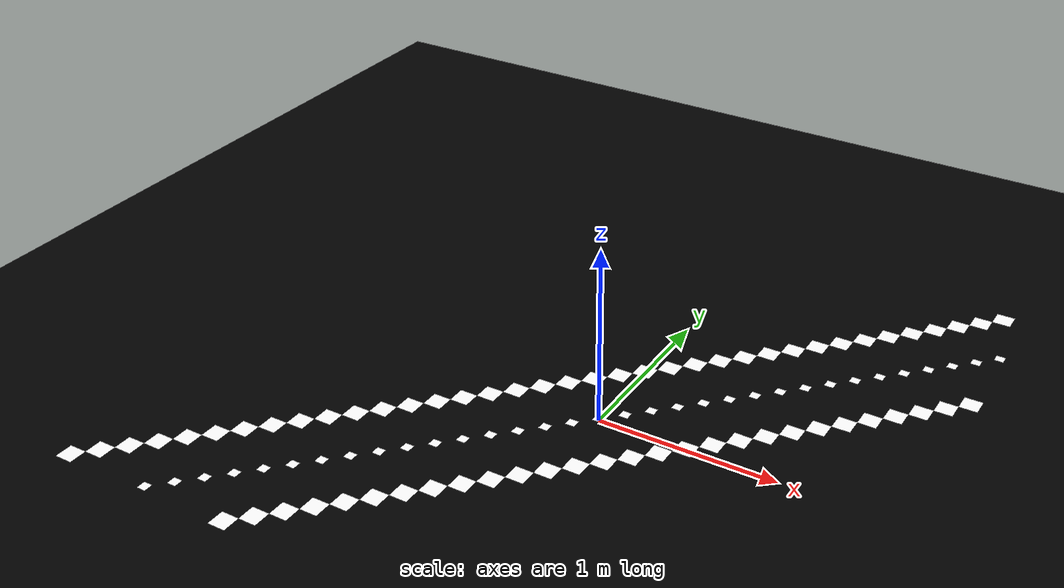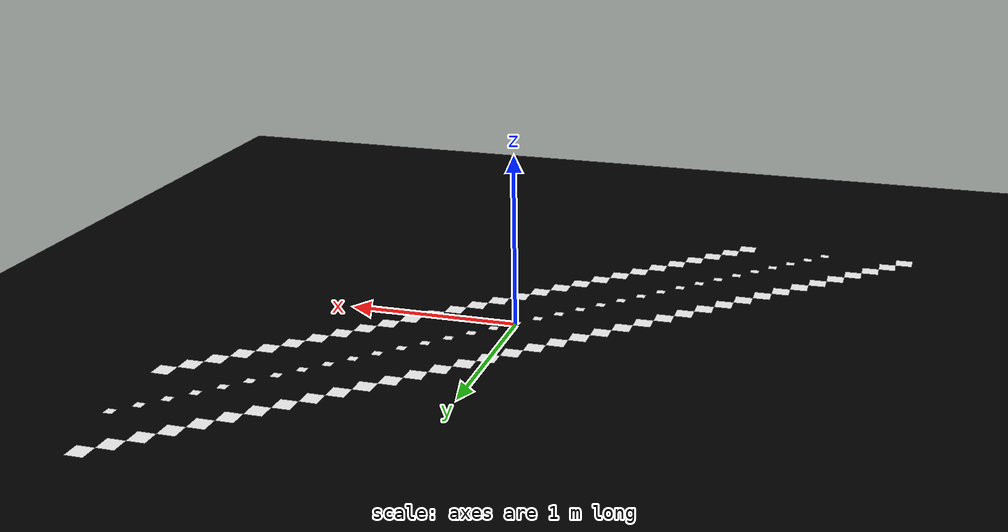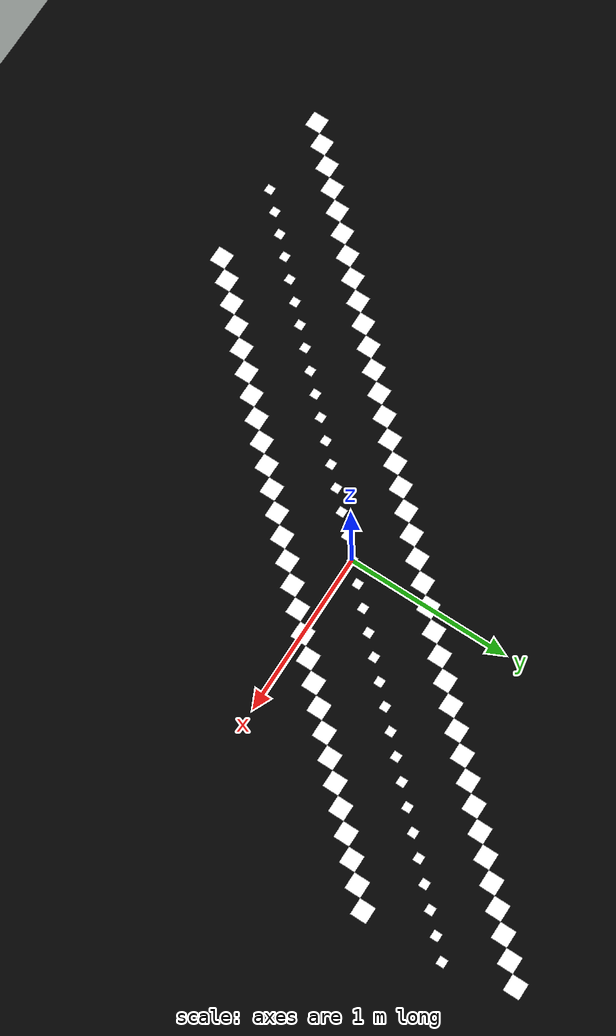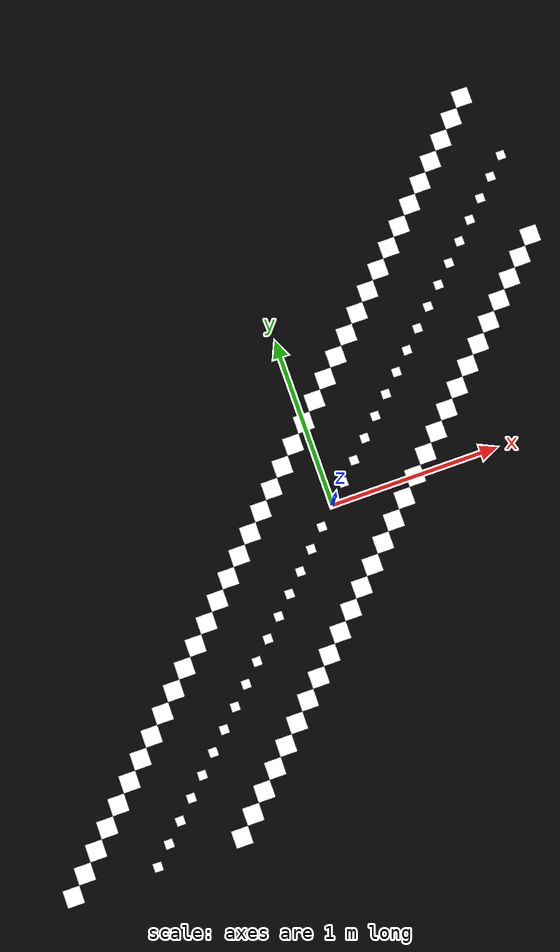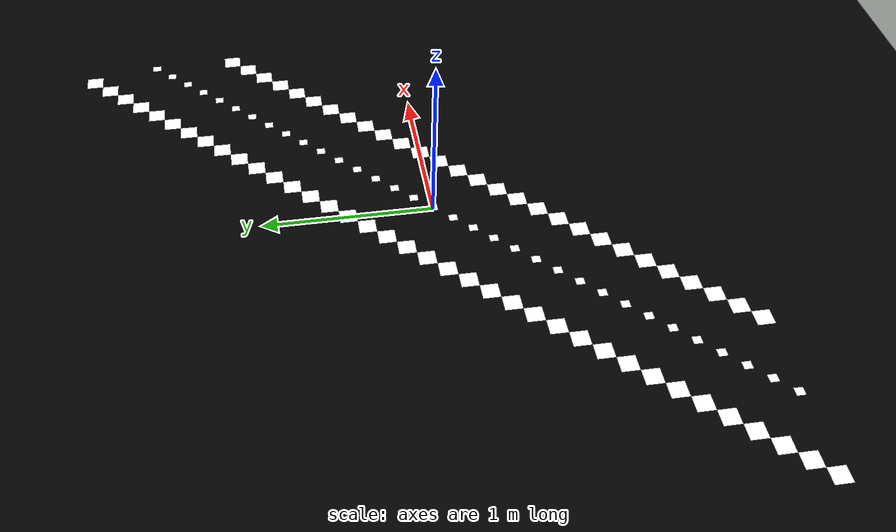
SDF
<sdf version="1.5">
 <model name="AutoNOMOS_mini_intersection">
  <static>true</static>
  <link name="field">
   <pose>0 0 0.01 0 0 0</pose>
   <collision name="collision">
    <geometry><plane><normal>0 0 1</normal><size>10 10</size></plane></geometry>
    <surface><friction><ode><mu>100</mu><mu2>50</mu2></ode></friction></surface>
   </collision>
   <visual name="carpet">
    <cast_shadows>false</cast_shadows>
    <geometry><plane><normal>0 0 1</normal><size>10 10</size></plane></geometry>
    <material>
     <ambient>0 0 0 0</ambient>
     <diffuse>0 0 0 1</diffuse>
     <specular>0 0 0 0</specular>
     <emissive>0 0 0 0</emissive>
    </material>
   </visual>
  </link>
  <link name="L1_p-2.1">
   <pose>-2.1 -1.6 0.011 0 0 0</pose>
   <visual name="visual_L1_p-2.1">
    <cast_shadows>false</cast_shadows>
    <geometry><plane><normal>0 0 1</normal><size>.1 .1</size></plane></geometry>
    <material>
     <ambient>0 0 0 0</ambient>
     <diffuse>1 1 1 0</diffuse>
     <specular>0 0 0 0</specular>
     <emissive>0 0 0 0</emissive>
    </material>
   </visual>
  </link>
  <link name="L1_p-2.">
   <pose>-2 -1.5 0.011 0 0 0</pose>
   <visual name="visual_L1_p-2.">
    <cast_shadows>false</cast_shadows>
    <geometry><plane><normal>0 0 1</normal><size>.1 .1</size></plane></geometry>
    <material>
     <ambient>0 0 0 0</ambient>
     <diffuse>1 1 1 0</diffuse>
     <specular>0 0 0 0</specular>
     <emissive>0 0 0 0</emissive>
    </material>
   </visual>
  </link>
  <link name="L1_p-1.9">
   <pose>-1.9 -1.4 0.011 0 0 0</pose>
   <visual name="visual_L1_p-1.9">
    <cast_shadows>false</cast_shadows>
    <geometry><plane><normal>0 0 1</normal><size>.1 .1</size></plane></geometry>
    <material>
     <ambient>0 0 0 0</ambient>
     <diffuse>1 1 1 0</diffuse>
     <specular>0 0 0 0</specular>
     <emissive>0 0 0 0</emissive>
    </material>
   </visual>
  </link>
  <link name="L1_p-1.8">
   <pose>-1.8 -1.3 0.011 0 0 0</pose>
   <visual name="visual_L1_p-1.8">
    <cast_shadows>false</cast_shadows>
    <geometry><plane><normal>0 0 1</normal><size>.1 .1</size></plane></geometry>
    <material>
     <ambient>0 0 0 0</ambient>
     <diffuse>1 1 1 0</diffuse>
     <specular>0 0 0 0</specular>
     <emissive>0 0 0 0</emissive>
    </material>
   </visual>
  </link>
  <link name="L1_p-1.7">
   <pose>-1.7 -1.2 0.011 0 0 0</pose>
   <visual name="visual_L1_p-1.7">
    <cast_shadows>false</cast_shadows>
    <geometry><plane><normal>0 0 1</normal><size>.1 .1</size></plane></geometry>
    <material>
     <ambient>0 0 0 0</ambient>
     <diffuse>1 1 1 0</diffuse>
     <specular>0 0 0 0</specular>
     <emissive>0 0 0 0</emissive>
    </material>
   </visual>
  </link>
  <link name="L1_p35">
   <pose>-1.6 -1.6 0.011 0 0 0</pose>
   <visual name="visual_L1_p35">
    <cast_shadows>false</cast_shadows>
    <geometry><plane><normal>0 0 1</normal><size>.05 .05</size></plane></geometry>
    <material>
     <ambient>0 0 0 0</ambient>
     <diffuse>1 1 1 0</diffuse>
     <specular>0 0 0 0</specular>
     <emissive>0 0 0 0</emissive>
    </material>
   </visual>
  </link>
  <link name="L1_p-1.6">
   <pose>-1.6 -1.1 0.011 0 0 0</pose>
   <visual name="visual_L1_p-1.6">
    <cast_shadows>false</cast_shadows>
    <geometry><plane><normal>0 0 1</normal><size>.1 .1</size></plane></geometry>
    <material>
     <ambient>0 0 0 0</ambient>
     <diffuse>1 1 1 0</diffuse>
     <specular>0 0 0 0</specular>
     <emissive>0 0 0 0</emissive>
    </material>
   </visual>
  </link>
  <link name="L1_p36">
   <pose>-1.5 -1.5 0.011 0 0 0</pose>
   <visual name="visual_L1_p36">
    <cast_shadows>false</cast_shadows>
    <geometry><plane><normal>0 0 1</normal><size>.05 .05</size></plane></geometry>
    <material>
     <ambient>0 0 0 0</ambient>
     <diffuse>1 1 1 0</diffuse>
     <specular>0 0 0 0</specular>
     <emissive>0 0 0 0</emissive>
    </material>
   </visual>
  </link>
  <link name="L1_p-1.5">
   <pose>-1.5 -1 0.011 0 0 0</pose>
   <visual name="visual_L1_p-1.5">
    <cast_shadows>false</cast_shadows>
    <geometry><plane><normal>0 0 1</normal><size>.1 .1</size></plane></geometry>
    <material>
     <ambient>0 0 0 0</ambient>
     <diffuse>1 1 1 0</diffuse>
     <specular>0 0 0 0</specular>
     <emissive>0 0 0 0</emissive>
    </material>
   </visual>
  </link>
  <link name="L1_p37">
   <pose>-1.4 -1.4 0.011 0 0 0</pose>
   <visual name="visual_L1_p37">
    <cast_shadows>false</cast_shadows>
    <geometry><plane><normal>0 0 1</normal><size>.05 .05</size></plane></geometry>
    <material>
     <ambient>0 0 0 0</ambient>
     <diffuse>1 1 1 0</diffuse>
     <specular>0 0 0 0</specular>
     <emissive>0 0 0 0</emissive>
    </material>
   </visual>
  </link>
  <link name="L1_p-1.4">
   <pose>-1.4 -0.9 0.011 0 0 0</pose>
   <visual name="visual_L1_p-1.4">
    <cast_shadows>false</cast_shadows>
    <geometry><plane><normal>0 0 1</normal><size>.1 .1</size></plane></geometry>
    <material>
     <ambient>0 0 0 0</ambient>
     <diffuse>1 1 1 0</diffuse>
     <specular>0 0 0 0</specular>
     <emissive>0 0 0 0</emissive>
    </material>
   </visual>
  </link>
  <link name="L1_p38">
   <pose>-1.3 -1.3 0.011 0 0 0</pose>
   <visual name="visual_L1_p38">
    <cast_shadows>false</cast_shadows>
    <geometry><plane><normal>0 0 1</normal><size>.05 .05</size></plane></geometry>
    <material>
     <ambient>0 0 0 0</ambient>
     <diffuse>1 1 1 0</diffuse>
     <specular>0 0 0 0</specular>
     <emissive>0 0 0 0</emissive>
    </material>
   </visual>
  </link>
  <link name="L1_p-1.3">
   <pose>-1.3 -0.8 0.011 0 0 0</pose>
   <visual name="visual_L1_p-1.3">
    <cast_shadows>false</cast_shadows>
    <geometry><plane><normal>0 0 1</normal><size>.1 .1</size></plane></geometry>
    <material>
     <ambient>0 0 0 0</ambient>
     <diffuse>1 1 1 0</diffuse>
     <specular>0 0 0 0</specular>
     <emissive>0 0 0 0</emissive>
    </material>
   </visual>
  </link>
  <link name="L1_p39">
   <pose>-1.2 -1.2 0.011 0 0 0</pose>
   <visual name="visual_L1_p39">
    <cast_shadows>false</cast_shadows>
    <geometry><plane><normal>0 0 1</normal><size>.05 .05</size></plane></geometry>
    <material>
     <ambient>0 0 0 0</ambient>
     <diffuse>1 1 1 0</diffuse>
     <specular>0 0 0 0</specular>
     <emissive>0 0 0 0</emissive>
    </material>
   </visual>
  </link>
  <link name="L1_p-1.2">
   <pose>-1.2 -0.7 0.011 0 0 0</pose>
   <visual name="visual_L1_p-1.2">
    <cast_shadows>false</cast_shadows>
    <geometry><plane><normal>0 0 1</normal><size>.1 .1</size></plane></geometry>
    <material>
     <ambient>0 0 0 0</ambient>
     <diffuse>1 1 1 0</diffuse>
     <specular>0 0 0 0</specular>
     <emissive>0 0 0 0</emissive>
    </material>
   </visual>
  </link>
  <link name="L1_p40">
   <pose>-1.1 -1.1 0.011 0 0 0</pose>
   <visual name="visual_L1_p40">
    <cast_shadows>false</cast_shadows>
    <geometry><plane><normal>0 0 1</normal><size>.05 .05</size></plane></geometry>
    <material>
     <ambient>0 0 0 0</ambient>
     <diffuse>1 1 1 0</diffuse>
     <specular>0 0 0 0</specular>
     <emissive>0 0 0 0</emissive>
    </material>
   </visual>
  </link>
  <link name="L1_p-1.1">
   <pose>-1.1 -0.6 0.011 0 0 0</pose>
   <visual name="visual_L1_p-1.1">
    <cast_shadows>false</cast_shadows>
    <geometry><plane><normal>0 0 1</normal><size>.1 .1</size></plane></geometry>
    <material>
     <ambient>0 0 0 0</ambient>
     <diffuse>1 1 1 0</diffuse>
     <specular>0 0 0 0</specular>
     <emissive>0 0 0 0</emissive>
    </material>
   </visual>
  </link>
  <link name="L1_p-0.600000000000001">
   <pose>-1.1 -1.6 0.011 0 0 0</pose>
   <visual name="visual_L1_p-0.600000000000001">
    <cast_shadows>false</cast_shadows>
    <geometry><plane><normal>0 0 1</normal><size>.1 .1</size></plane></geometry>
    <material>
     <ambient>0 0 0 0</ambient>
     <diffuse>1 1 1 0</diffuse>
     <specular>0 0 0 0</specular>
     <emissive>0 0 0 0</emissive>
    </material>
   </visual>
  </link>
  <link name="L1_p41">
   <pose>-1 -1 0.011 0 0 0</pose>
   <visual name="visual_L1_p41">
    <cast_shadows>false</cast_shadows>
    <geometry><plane><normal>0 0 1</normal><size>.05 .05</size></plane></geometry>
    <material>
     <ambient>0 0 0 0</ambient>
     <diffuse>1 1 1 0</diffuse>
     <specular>0 0 0 0</specular>
     <emissive>0 0 0 0</emissive>
    </material>
   </visual>
  </link>
  <link name="L1_p-1">
   <pose>-1 -0.5 0.011 0 0 0</pose>
   <visual name="visual_L1_p-1">
    <cast_shadows>false</cast_shadows>
    <geometry><plane><normal>0 0 1</normal><size>.1 .1</size></plane></geometry>
    <material>
     <ambient>0 0 0 0</ambient>
     <diffuse>1 1 1 0</diffuse>
     <specular>0 0 0 0</specular>
     <emissive>0 0 0 0</emissive>
    </material>
   </visual>
  </link>
  <link name="L1_p-0.500000000000001">
   <pose>-1 -1.5 0.011 0 0 0</pose>
   <visual name="visual_L1_p-0.500000000000001">
    <cast_shadows>false</cast_shadows>
    <geometry><plane><normal>0 0 1</normal><size>.1 .1</size></plane></geometry>
    <material>
     <ambient>0 0 0 0</ambient>
     <diffuse>1 1 1 0</diffuse>
     <specular>0 0 0 0</specular>
     <emissive>0 0 0 0</emissive>
    </material>
   </visual>
  </link>
  <link name="L1_p42">
   <pose>-0.9 -0.9 0.011 0 0 0</pose>
   <visual name="visual_L1_p42">
    <cast_shadows>false</cast_shadows>
    <geometry><plane><normal>0 0 1</normal><size>.05 .05</size></plane></geometry>
    <material>
     <ambient>0 0 0 0</ambient>
     <diffuse>1 1 1 0</diffuse>
     <specular>0 0 0 0</specular>
     <emissive>0 0 0 0</emissive>
    </material>
   </visual>
  </link>
  <link name="L1_p-0.900000000000001">
   <pose>-0.9 -0.4 0.011 0 0 0</pose>
   <visual name="visual_L1_p-0.900000000000001">
    <cast_shadows>false</cast_shadows>
    <geometry><plane><normal>0 0 1</normal><size>.1 .1</size></plane></geometry>
    <material>
     <ambient>0 0 0 0</ambient>
     <diffuse>1 1 1 0</diffuse>
     <specular>0 0 0 0</specular>
     <emissive>0 0 0 0</emissive>
    </material>
   </visual>
  </link>
  <link name="L1_p-0.400000000000001">
   <pose>-0.9 -1.4 0.011 0 0 0</pose>
   <visual name="visual_L1_p-0.400000000000001">
    <cast_shadows>false</cast_shadows>
    <geometry><plane><normal>0 0 1</normal><size>.1 .1</size></plane></geometry>
    <material>
     <ambient>0 0 0 0</ambient>
     <diffuse>1 1 1 0</diffuse>
     <specular>0 0 0 0</specular>
     <emissive>0 0 0 0</emissive>
    </material>
   </visual>
  </link>
  <link name="L1_p43">
   <pose>-0.8 -0.8 0.011 0 0 0</pose>
   <visual name="visual_L1_p43">
    <cast_shadows>false</cast_shadows>
    <geometry><plane><normal>0 0 1</normal><size>.05 .05</size></plane></geometry>
    <material>
     <ambient>0 0 0 0</ambient>
     <diffuse>1 1 1 0</diffuse>
     <specular>0 0 0 0</specular>
     <emissive>0 0 0 0</emissive>
    </material>
   </visual>
  </link>
  <link name="L1_p-0.800000000000001">
   <pose>-0.8 -0.3 0.011 0 0 0</pose>
   <visual name="visual_L1_p-0.800000000000001">
    <cast_shadows>false</cast_shadows>
    <geometry><plane><normal>0 0 1</normal><size>.1 .1</size></plane></geometry>
    <material>
     <ambient>0 0 0 0</ambient>
     <diffuse>1 1 1 0</diffuse>
     <specular>0 0 0 0</specular>
     <emissive>0 0 0 0</emissive>
    </material>
   </visual>
  </link>
  <link name="L1_p-0.300000000000001">
   <pose>-0.8 -1.3 0.011 0 0 0</pose>
   <visual name="visual_L1_p-0.300000000000001">
    <cast_shadows>false</cast_shadows>
    <geometry><plane><normal>0 0 1</normal><size>.1 .1</size></plane></geometry>
    <material>
     <ambient>0 0 0 0</ambient>
     <diffuse>1 1 1 0</diffuse>
     <specular>0 0 0 0</specular>
     <emissive>0 0 0 0</emissive>
    </material>
   </visual>
  </link>
  <link name="L1_p44">
   <pose>-0.7 -0.7 0.011 0 0 0</pose>
   <visual name="visual_L1_p44">
    <cast_shadows>false</cast_shadows>
    <geometry><plane><normal>0 0 1</normal><size>.05 .05</size></plane></geometry>
    <material>
     <ambient>0 0 0 0</ambient>
     <diffuse>1 1 1 0</diffuse>
     <specular>0 0 0 0</specular>
     <emissive>0 0 0 0</emissive>
    </material>
   </visual>
  </link>
  <link name="L1_p-0.700000000000001">
   <pose>-0.7 -0.2 0.011 0 0 0</pose>
   <visual name="visual_L1_p-0.700000000000001">
    <cast_shadows>false</cast_shadows>
    <geometry><plane><normal>0 0 1</normal><size>.1 .1</size></plane></geometry>
    <material>
     <ambient>0 0 0 0</ambient>
     <diffuse>1 1 1 0</diffuse>
     <specular>0 0 0 0</specular>
     <emissive>0 0 0 0</emissive>
    </material>
   </visual>
  </link>
  <link name="L1_p-0.200000000000001">
   <pose>-0.7 -1.2 0.011 0 0 0</pose>
   <visual name="visual_L1_p-0.200000000000001">
    <cast_shadows>false</cast_shadows>
    <geometry><plane><normal>0 0 1</normal><size>.1 .1</size></plane></geometry>
    <material>
     <ambient>0 0 0 0</ambient>
     <diffuse>1 1 1 0</diffuse>
     <specular>0 0 0 0</specular>
     <emissive>0 0 0 0</emissive>
    </material>
   </visual>
  </link>
  <link name="L1_p45">
   <pose>-0.6 -0.6 0.011 0 0 0</pose>
   <visual name="visual_L1_p45">
    <cast_shadows>false</cast_shadows>
    <geometry><plane><normal>0 0 1</normal><size>.05 .05</size></plane></geometry>
    <material>
     <ambient>0 0 0 0</ambient>
     <diffuse>1 1 1 0</diffuse>
     <specular>0 0 0 0</specular>
     <emissive>0 0 0 0</emissive>
    </material>
   </visual>
  </link>
  <link name="L1_p-0.600000000000001">
   <pose>-0.6 -0.1 0.011 0 0 0</pose>
   <visual name="visual_L1_p-0.600000000000001">
    <cast_shadows>false</cast_shadows>
    <geometry><plane><normal>0 0 1</normal><size>.1 .1</size></plane></geometry>
    <material>
     <ambient>0 0 0 0</ambient>
     <diffuse>1 1 1 0</diffuse>
     <specular>0 0 0 0</specular>
     <emissive>0 0 0 0</emissive>
    </material>
   </visual>
  </link>
  <link name="L1_p-0.100000000000001">
   <pose>-0.6 -1.1 0.011 0 0 0</pose>
   <visual name="visual_L1_p-0.100000000000001">
    <cast_shadows>false</cast_shadows>
    <geometry><plane><normal>0 0 1</normal><size>.1 .1</size></plane></geometry>
    <material>
     <ambient>0 0 0 0</ambient>
     <diffuse>1 1 1 0</diffuse>
     <specular>0 0 0 0</specular>
     <emissive>0 0 0 0</emissive>
    </material>
   </visual>
  </link>
  <link name="L1_p46">
   <pose>-0.5 -0.5 0.011 0 0 0</pose>
   <visual name="visual_L1_p46">
    <cast_shadows>false</cast_shadows>
    <geometry><plane><normal>0 0 1</normal><size>.05 .05</size></plane></geometry>
    <material>
     <ambient>0 0 0 0</ambient>
     <diffuse>1 1 1 0</diffuse>
     <specular>0 0 0 0</specular>
     <emissive>0 0 0 0</emissive>
    </material>
   </visual>
  </link>
  <link name="L1_p-0.500000000000001">
   <pose>-0.5 0 0.011 0 0 0</pose>
   <visual name="visual_L1_p-0.500000000000001">
    <cast_shadows>false</cast_shadows>
    <geometry><plane><normal>0 0 1</normal><size>.1 .1</size></plane></geometry>
    <material>
     <ambient>0 0 0 0</ambient>
     <diffuse>1 1 1 0</diffuse>
     <specular>0 0 0 0</specular>
     <emissive>0 0 0 0</emissive>
    </material>
   </visual>
  </link>
  <link name="L1_p-9.99200722162641E-16">
   <pose>-0.5 -1 0.011 0 0 0</pose>
   <visual name="visual_L1_p-9.99200722162641E-16">
    <cast_shadows>false</cast_shadows>
    <geometry><plane><normal>0 0 1</normal><size>.1 .1</size></plane></geometry>
    <material>
     <ambient>0 0 0 0</ambient>
     <diffuse>1 1 1 0</diffuse>
     <specular>0 0 0 0</specular>
     <emissive>0 0 0 0</emissive>
    </material>
   </visual>
  </link>
  <link name="L1_p47">
   <pose>-0.4 -0.4 0.011 0 0 0</pose>
   <visual name="visual_L1_p47">
    <cast_shadows>false</cast_shadows>
    <geometry><plane><normal>0 0 1</normal><size>.05 .05</size></plane></geometry>
    <material>
     <ambient>0 0 0 0</ambient>
     <diffuse>1 1 1 0</diffuse>
     <specular>0 0 0 0</specular>
     <emissive>0 0 0 0</emissive>
    </material>
   </visual>
  </link>
  <link name="L1_p-0.400000000000001">
   <pose>-0.4 0.1 0.011 0 0 0</pose>
   <visual name="visual_L1_p-0.400000000000001">
    <cast_shadows>false</cast_shadows>
    <geometry><plane><normal>0 0 1</normal><size>.1 .1</size></plane></geometry>
    <material>
     <ambient>0 0 0 0</ambient>
     <diffuse>1 1 1 0</diffuse>
     <specular>0 0 0 0</specular>
     <emissive>0 0 0 0</emissive>
    </material>
   </visual>
  </link>
  <link name="L1_p0.099999999999999">
   <pose>-0.4 -0.9 0.011 0 0 0</pose>
   <visual name="visual_L1_p0.099999999999999">
    <cast_shadows>false</cast_shadows>
    <geometry><plane><normal>0 0 1</normal><size>.1 .1</size></plane></geometry>
    <material>
     <ambient>0 0 0 0</ambient>
     <diffuse>1 1 1 0</diffuse>
     <specular>0 0 0 0</specular>
     <emissive>0 0 0 0</emissive>
    </material>
   </visual>
  </link>
  <link name="L1_p48">
   <pose>-0.3 -0.3 0.011 0 0 0</pose>
   <visual name="visual_L1_p48">
    <cast_shadows>false</cast_shadows>
    <geometry><plane><normal>0 0 1</normal><size>.05 .05</size></plane></geometry>
    <material>
     <ambient>0 0 0 0</ambient>
     <diffuse>1 1 1 0</diffuse>
     <specular>0 0 0 0</specular>
     <emissive>0 0 0 0</emissive>
    </material>
   </visual>
  </link>
  <link name="L1_p-0.300000000000001">
   <pose>-0.3 0.2 0.011 0 0 0</pose>
   <visual name="visual_L1_p-0.300000000000001">
    <cast_shadows>false</cast_shadows>
    <geometry><plane><normal>0 0 1</normal><size>.1 .1</size></plane></geometry>
    <material>
     <ambient>0 0 0 0</ambient>
     <diffuse>1 1 1 0</diffuse>
     <specular>0 0 0 0</specular>
     <emissive>0 0 0 0</emissive>
    </material>
   </visual>
  </link>
  <link name="L1_p0.199999999999999">
   <pose>-0.3 -0.8 0.011 0 0 0</pose>
   <visual name="visual_L1_p0.199999999999999">
    <cast_shadows>false</cast_shadows>
    <geometry><plane><normal>0 0 1</normal><size>.1 .1</size></plane></geometry>
    <material>
     <ambient>0 0 0 0</ambient>
     <diffuse>1 1 1 0</diffuse>
     <specular>0 0 0 0</specular>
     <emissive>0 0 0 0</emissive>
    </material>
   </visual>
  </link>
  <link name="L1_p49">
   <pose>-0.2 -0.2 0.011 0 0 0</pose>
   <visual name="visual_L1_p49">
    <cast_shadows>false</cast_shadows>
    <geometry><plane><normal>0 0 1</normal><size>.05 .05</size></plane></geometry>
    <material>
     <ambient>0 0 0 0</ambient>
     <diffuse>1 1 1 0</diffuse>
     <specular>0 0 0 0</specular>
     <emissive>0 0 0 0</emissive>
    </material>
   </visual>
  </link>
  <link name="L1_p-0.200000000000001">
   <pose>-0.2 0.3 0.011 0 0 0</pose>
   <visual name="visual_L1_p-0.200000000000001">
    <cast_shadows>false</cast_shadows>
    <geometry><plane><normal>0 0 1</normal><size>.1 .1</size></plane></geometry>
    <material>
     <ambient>0 0 0 0</ambient>
     <diffuse>1 1 1 0</diffuse>
     <specular>0 0 0 0</specular>
     <emissive>0 0 0 0</emissive>
    </material>
   </visual>
  </link>
  <link name="L1_p0.299999999999999">
   <pose>-0.2 -0.7 0.011 0 0 0</pose>
   <visual name="visual_L1_p0.299999999999999">
    <cast_shadows>false</cast_shadows>
    <geometry><plane><normal>0 0 1</normal><size>.1 .1</size></plane></geometry>
    <material>
     <ambient>0 0 0 0</ambient>
     <diffuse>1 1 1 0</diffuse>
     <specular>0 0 0 0</specular>
     <emissive>0 0 0 0</emissive>
    </material>
   </visual>
  </link>
  <link name="L1_p50">
   <pose>-0.1 -0.1 0.011 0 0 0</pose>
   <visual name="visual_L1_p50">
    <cast_shadows>false</cast_shadows>
    <geometry><plane><normal>0 0 1</normal><size>.05 .05</size></plane></geometry>
    <material>
     <ambient>0 0 0 0</ambient>
     <diffuse>1 1 1 0</diffuse>
     <specular>0 0 0 0</specular>
     <emissive>0 0 0 0</emissive>
    </material>
   </visual>
  </link>
  <link name="L1_p-0.100000000000001">
   <pose>-0.1 0.4 0.011 0 0 0</pose>
   <visual name="visual_L1_p-0.100000000000001">
    <cast_shadows>false</cast_shadows>
    <geometry><plane><normal>0 0 1</normal><size>.1 .1</size></plane></geometry>
    <material>
     <ambient>0 0 0 0</ambient>
     <diffuse>1 1 1 0</diffuse>
     <specular>0 0 0 0</specular>
     <emissive>0 0 0 0</emissive>
    </material>
   </visual>
  </link>
  <link name="L1_p0.399999999999999">
   <pose>-0.1 -0.6 0.011 0 0 0</pose>
   <visual name="visual_L1_p0.399999999999999">
    <cast_shadows>false</cast_shadows>
    <geometry><plane><normal>0 0 1</normal><size>.1 .1</size></plane></geometry>
    <material>
     <ambient>0 0 0 0</ambient>
     <diffuse>1 1 1 0</diffuse>
     <specular>0 0 0 0</specular>
     <emissive>0 0 0 0</emissive>
    </material>
   </visual>
  </link>
  <link name="L1_p51">
   <pose>0 0 0.011 0 0 0</pose>
   <visual name="visual_L1_p51">
    <cast_shadows>false</cast_shadows>
    <geometry><plane><normal>0 0 1</normal><size>.05 .05</size></plane></geometry>
    <material>
     <ambient>0 0 0 0</ambient>
     <diffuse>1 1 1 0</diffuse>
     <specular>0 0 0 0</specular>
     <emissive>0 0 0 0</emissive>
    </material>
   </visual>
  </link>
  <link name="L1_p-1.02695629777827E-15">
   <pose>0 0.5 0.011 0 0 0</pose>
   <visual name="visual_L1_p-1.02695629777827E-15">
    <cast_shadows>false</cast_shadows>
    <geometry><plane><normal>0 0 1</normal><size>.1 .1</size></plane></geometry>
    <material>
     <ambient>0 0 0 0</ambient>
     <diffuse>1 1 1 0</diffuse>
     <specular>0 0 0 0</specular>
     <emissive>0 0 0 0</emissive>
    </material>
   </visual>
  </link>
  <link name="L1_p0.499999999999999">
   <pose>0 -0.5 0.011 0 0 0</pose>
   <visual name="visual_L1_p0.499999999999999">
    <cast_shadows>false</cast_shadows>
    <geometry><plane><normal>0 0 1</normal><size>.1 .1</size></plane></geometry>
    <material>
     <ambient>0 0 0 0</ambient>
     <diffuse>1 1 1 0</diffuse>
     <specular>0 0 0 0</specular>
     <emissive>0 0 0 0</emissive>
    </material>
   </visual>
  </link>
  <link name="L1_p52">
   <pose>0.1 0.1 0.011 0 0 0</pose>
   <visual name="visual_L1_p52">
    <cast_shadows>false</cast_shadows>
    <geometry><plane><normal>0 0 1</normal><size>.05 .05</size></plane></geometry>
    <material>
     <ambient>0 0 0 0</ambient>
     <diffuse>1 1 1 0</diffuse>
     <specular>0 0 0 0</specular>
     <emissive>0 0 0 0</emissive>
    </material>
   </visual>
  </link>
  <link name="L1_p0.099999999999999">
   <pose>0.1 0.6 0.011 0 0 0</pose>
   <visual name="visual_L1_p0.099999999999999">
    <cast_shadows>false</cast_shadows>
    <geometry><plane><normal>0 0 1</normal><size>.1 .1</size></plane></geometry>
    <material>
     <ambient>0 0 0 0</ambient>
     <diffuse>1 1 1 0</diffuse>
     <specular>0 0 0 0</specular>
     <emissive>0 0 0 0</emissive>
    </material>
   </visual>
  </link>
  <link name="L1_p0.599999999999999">
   <pose>0.1 -0.4 0.011 0 0 0</pose>
   <visual name="visual_L1_p0.599999999999999">
    <cast_shadows>false</cast_shadows>
    <geometry><plane><normal>0 0 1</normal><size>.1 .1</size></plane></geometry>
    <material>
     <ambient>0 0 0 0</ambient>
     <diffuse>1 1 1 0</diffuse>
     <specular>0 0 0 0</specular>
     <emissive>0 0 0 0</emissive>
    </material>
   </visual>
  </link>
  <link name="L1_p53">
   <pose>0.2 0.2 0.011 0 0 0</pose>
   <visual name="visual_L1_p53">
    <cast_shadows>false</cast_shadows>
    <geometry><plane><normal>0 0 1</normal><size>.05 .05</size></plane></geometry>
    <material>
     <ambient>0 0 0 0</ambient>
     <diffuse>1 1 1 0</diffuse>
     <specular>0 0 0 0</specular>
     <emissive>0 0 0 0</emissive>
    </material>
   </visual>
  </link>
  <link name="L1_p0.199999999999999">
   <pose>0.2 0.7 0.011 0 0 0</pose>
   <visual name="visual_L1_p0.199999999999999">
    <cast_shadows>false</cast_shadows>
    <geometry><plane><normal>0 0 1</normal><size>.1 .1</size></plane></geometry>
    <material>
     <ambient>0 0 0 0</ambient>
     <diffuse>1 1 1 0</diffuse>
     <specular>0 0 0 0</specular>
     <emissive>0 0 0 0</emissive>
    </material>
   </visual>
  </link>
  <link name="L1_p0.699999999999999">
   <pose>0.2 -0.3 0.011 0 0 0</pose>
   <visual name="visual_L1_p0.699999999999999">
    <cast_shadows>false</cast_shadows>
    <geometry><plane><normal>0 0 1</normal><size>.1 .1</size></plane></geometry>
    <material>
     <ambient>0 0 0 0</ambient>
     <diffuse>1 1 1 0</diffuse>
     <specular>0 0 0 0</specular>
     <emissive>0 0 0 0</emissive>
    </material>
   </visual>
  </link>
  <link name="L1_p54">
   <pose>0.3 0.3 0.011 0 0 0</pose>
   <visual name="visual_L1_p54">
    <cast_shadows>false</cast_shadows>
    <geometry><plane><normal>0 0 1</normal><size>.05 .05</size></plane></geometry>
    <material>
     <ambient>0 0 0 0</ambient>
     <diffuse>1 1 1 0</diffuse>
     <specular>0 0 0 0</specular>
     <emissive>0 0 0 0</emissive>
    </material>
   </visual>
  </link>
  <link name="L1_p0.299999999999999">
   <pose>0.3 0.8 0.011 0 0 0</pose>
   <visual name="visual_L1_p0.299999999999999">
    <cast_shadows>false</cast_shadows>
    <geometry><plane><normal>0 0 1</normal><size>.1 .1</size></plane></geometry>
    <material>
     <ambient>0 0 0 0</ambient>
     <diffuse>1 1 1 0</diffuse>
     <specular>0 0 0 0</specular>
     <emissive>0 0 0 0</emissive>
    </material>
   </visual>
  </link>
  <link name="L1_p0.799999999999999">
   <pose>0.3 -0.2 0.011 0 0 0</pose>
   <visual name="visual_L1_p0.799999999999999">
    <cast_shadows>false</cast_shadows>
    <geometry><plane><normal>0 0 1</normal><size>.1 .1</size></plane></geometry>
    <material>
     <ambient>0 0 0 0</ambient>
     <diffuse>1 1 1 0</diffuse>
     <specular>0 0 0 0</specular>
     <emissive>0 0 0 0</emissive>
    </material>
   </visual>
  </link>
  <link name="L1_p55">
   <pose>0.4 0.4 0.011 0 0 0</pose>
   <visual name="visual_L1_p55">
    <cast_shadows>false</cast_shadows>
    <geometry><plane><normal>0 0 1</normal><size>.05 .05</size></plane></geometry>
    <material>
     <ambient>0 0 0 0</ambient>
     <diffuse>1 1 1 0</diffuse>
     <specular>0 0 0 0</specular>
     <emissive>0 0 0 0</emissive>
    </material>
   </visual>
  </link>
  <link name="L1_p0.399999999999999">
   <pose>0.4 0.9 0.011 0 0 0</pose>
   <visual name="visual_L1_p0.399999999999999">
    <cast_shadows>false</cast_shadows>
    <geometry><plane><normal>0 0 1</normal><size>.1 .1</size></plane></geometry>
    <material>
     <ambient>0 0 0 0</ambient>
     <diffuse>1 1 1 0</diffuse>
     <specular>0 0 0 0</specular>
     <emissive>0 0 0 0</emissive>
    </material>
   </visual>
  </link>
  <link name="L1_p0.899999999999999">
   <pose>0.4 -0.1 0.011 0 0 0</pose>
   <visual name="visual_L1_p0.899999999999999">
    <cast_shadows>false</cast_shadows>
    <geometry><plane><normal>0 0 1</normal><size>.1 .1</size></plane></geometry>
    <material>
     <ambient>0 0 0 0</ambient>
     <diffuse>1 1 1 0</diffuse>
     <specular>0 0 0 0</specular>
     <emissive>0 0 0 0</emissive>
    </material>
   </visual>
  </link>
  <link name="L1_p56">
   <pose>0.5 0.5 0.011 0 0 0</pose>
   <visual name="visual_L1_p56">
    <cast_shadows>false</cast_shadows>
    <geometry><plane><normal>0 0 1</normal><size>.05 .05</size></plane></geometry>
    <material>
     <ambient>0 0 0 0</ambient>
     <diffuse>1 1 1 0</diffuse>
     <specular>0 0 0 0</specular>
     <emissive>0 0 0 0</emissive>
    </material>
   </visual>
  </link>
  <link name="L1_p0.499999999999999">
   <pose>0.5 1 0.011 0 0 0</pose>
   <visual name="visual_L1_p0.499999999999999">
    <cast_shadows>false</cast_shadows>
    <geometry><plane><normal>0 0 1</normal><size>.1 .1</size></plane></geometry>
    <material>
     <ambient>0 0 0 0</ambient>
     <diffuse>1 1 1 0</diffuse>
     <specular>0 0 0 0</specular>
     <emissive>0 0 0 0</emissive>
    </material>
   </visual>
  </link>
  <link name="L1_p0.999999999999999">
   <pose>0.5 0 0.011 0 0 0</pose>
   <visual name="visual_L1_p0.999999999999999">
    <cast_shadows>false</cast_shadows>
    <geometry><plane><normal>0 0 1</normal><size>.1 .1</size></plane></geometry>
    <material>
     <ambient>0 0 0 0</ambient>
     <diffuse>1 1 1 0</diffuse>
     <specular>0 0 0 0</specular>
     <emissive>0 0 0 0</emissive>
    </material>
   </visual>
  </link>
  <link name="L1_p57">
   <pose>0.6 0.6 0.011 0 0 0</pose>
   <visual name="visual_L1_p57">
    <cast_shadows>false</cast_shadows>
    <geometry><plane><normal>0 0 1</normal><size>.05 .05</size></plane></geometry>
    <material>
     <ambient>0 0 0 0</ambient>
     <diffuse>1 1 1 0</diffuse>
     <specular>0 0 0 0</specular>
     <emissive>0 0 0 0</emissive>
    </material>
   </visual>
  </link>
  <link name="L1_p0.599999999999999">
   <pose>0.6 1.1 0.011 0 0 0</pose>
   <visual name="visual_L1_p0.599999999999999">
    <cast_shadows>false</cast_shadows>
    <geometry><plane><normal>0 0 1</normal><size>.1 .1</size></plane></geometry>
    <material>
     <ambient>0 0 0 0</ambient>
     <diffuse>1 1 1 0</diffuse>
     <specular>0 0 0 0</specular>
     <emissive>0 0 0 0</emissive>
    </material>
   </visual>
  </link>
  <link name="L1_p1.1">
   <pose>0.6 0.1 0.011 0 0 0</pose>
   <visual name="visual_L1_p1.1">
    <cast_shadows>false</cast_shadows>
    <geometry><plane><normal>0 0 1</normal><size>.1 .1</size></plane></geometry>
    <material>
     <ambient>0 0 0 0</ambient>
     <diffuse>1 1 1 0</diffuse>
     <specular>0 0 0 0</specular>
     <emissive>0 0 0 0</emissive>
    </material>
   </visual>
  </link>
  <link name="L1_p58">
   <pose>0.7 0.7 0.011 0 0 0</pose>
   <visual name="visual_L1_p58">
    <cast_shadows>false</cast_shadows>
    <geometry><plane><normal>0 0 1</normal><size>.05 .05</size></plane></geometry>
    <material>
     <ambient>0 0 0 0</ambient>
     <diffuse>1 1 1 0</diffuse>
     <specular>0 0 0 0</specular>
     <emissive>0 0 0 0</emissive>
    </material>
   </visual>
  </link>
  <link name="L1_p0.699999999999999">
   <pose>0.7 1.2 0.011 0 0 0</pose>
   <visual name="visual_L1_p0.699999999999999">
    <cast_shadows>false</cast_shadows>
    <geometry><plane><normal>0 0 1</normal><size>.1 .1</size></plane></geometry>
    <material>
     <ambient>0 0 0 0</ambient>
     <diffuse>1 1 1 0</diffuse>
     <specular>0 0 0 0</specular>
     <emissive>0 0 0 0</emissive>
    </material>
   </visual>
  </link>
  <link name="L1_p1.2">
   <pose>0.7 0.2 0.011 0 0 0</pose>
   <visual name="visual_L1_p1.2">
    <cast_shadows>false</cast_shadows>
    <geometry><plane><normal>0 0 1</normal><size>.1 .1</size></plane></geometry>
    <material>
     <ambient>0 0 0 0</ambient>
     <diffuse>1 1 1 0</diffuse>
     <specular>0 0 0 0</specular>
     <emissive>0 0 0 0</emissive>
    </material>
   </visual>
  </link>
  <link name="L1_p59">
   <pose>0.8 0.8 0.011 0 0 0</pose>
   <visual name="visual_L1_p59">
    <cast_shadows>false</cast_shadows>
    <geometry><plane><normal>0 0 1</normal><size>.05 .05</size></plane></geometry>
    <material>
     <ambient>0 0 0 0</ambient>
     <diffuse>1 1 1 0</diffuse>
     <specular>0 0 0 0</specular>
     <emissive>0 0 0 0</emissive>
    </material>
   </visual>
  </link>
  <link name="L1_p0.799999999999999">
   <pose>0.8 1.3 0.011 0 0 0</pose>
   <visual name="visual_L1_p0.799999999999999">
    <cast_shadows>false</cast_shadows>
    <geometry><plane><normal>0 0 1</normal><size>.1 .1</size></plane></geometry>
    <material>
     <ambient>0 0 0 0</ambient>
     <diffuse>1 1 1 0</diffuse>
     <specular>0 0 0 0</specular>
     <emissive>0 0 0 0</emissive>
    </material>
   </visual>
  </link>
  <link name="L1_p1.3">
   <pose>0.8 0.3 0.011 0 0 0</pose>
   <visual name="visual_L1_p1.3">
    <cast_shadows>false</cast_shadows>
    <geometry><plane><normal>0 0 1</normal><size>.1 .1</size></plane></geometry>
    <material>
     <ambient>0 0 0 0</ambient>
     <diffuse>1 1 1 0</diffuse>
     <specular>0 0 0 0</specular>
     <emissive>0 0 0 0</emissive>
    </material>
   </visual>
  </link>
  <link name="L1_p60">
   <pose>0.9 0.9 0.011 0 0 0</pose>
   <visual name="visual_L1_p60">
    <cast_shadows>false</cast_shadows>
    <geometry><plane><normal>0 0 1</normal><size>.05 .05</size></plane></geometry>
    <material>
     <ambient>0 0 0 0</ambient>
     <diffuse>1 1 1 0</diffuse>
     <specular>0 0 0 0</specular>
     <emissive>0 0 0 0</emissive>
    </material>
   </visual>
  </link>
  <link name="L1_p0.899999999999999">
   <pose>0.9 1.4 0.011 0 0 0</pose>
   <visual name="visual_L1_p0.899999999999999">
    <cast_shadows>false</cast_shadows>
    <geometry><plane><normal>0 0 1</normal><size>.1 .1</size></plane></geometry>
    <material>
     <ambient>0 0 0 0</ambient>
     <diffuse>1 1 1 0</diffuse>
     <specular>0 0 0 0</specular>
     <emissive>0 0 0 0</emissive>
    </material>
   </visual>
  </link>
  <link name="L1_p1.4">
   <pose>0.9 0.4 0.011 0 0 0</pose>
   <visual name="visual_L1_p1.4">
    <cast_shadows>false</cast_shadows>
    <geometry><plane><normal>0 0 1</normal><size>.1 .1</size></plane></geometry>
    <material>
     <ambient>0 0 0 0</ambient>
     <diffuse>1 1 1 0</diffuse>
     <specular>0 0 0 0</specular>
     <emissive>0 0 0 0</emissive>
    </material>
   </visual>
  </link>
  <link name="L1_p61">
   <pose>1 1 0.011 0 0 0</pose>
   <visual name="visual_L1_p61">
    <cast_shadows>false</cast_shadows>
    <geometry><plane><normal>0 0 1</normal><size>.05 .05</size></plane></geometry>
    <material>
     <ambient>0 0 0 0</ambient>
     <diffuse>1 1 1 0</diffuse>
     <specular>0 0 0 0</specular>
     <emissive>0 0 0 0</emissive>
    </material>
   </visual>
  </link>
  <link name="L1_p0.999999999999999">
   <pose>1 1.5 0.011 0 0 0</pose>
   <visual name="visual_L1_p0.999999999999999">
    <cast_shadows>false</cast_shadows>
    <geometry><plane><normal>0 0 1</normal><size>.1 .1</size></plane></geometry>
    <material>
     <ambient>0 0 0 0</ambient>
     <diffuse>1 1 1 0</diffuse>
     <specular>0 0 0 0</specular>
     <emissive>0 0 0 0</emissive>
    </material>
   </visual>
  </link>
  <link name="L1_p1.5">
   <pose>1 0.5 0.011 0 0 0</pose>
   <visual name="visual_L1_p1.5">
    <cast_shadows>false</cast_shadows>
    <geometry><plane><normal>0 0 1</normal><size>.1 .1</size></plane></geometry>
    <material>
     <ambient>0 0 0 0</ambient>
     <diffuse>1 1 1 0</diffuse>
     <specular>0 0 0 0</specular>
     <emissive>0 0 0 0</emissive>
    </material>
   </visual>
  </link>
  <link name="L1_p62">
   <pose>1.1 1.1 0.011 0 0 0</pose>
   <visual name="visual_L1_p62">
    <cast_shadows>false</cast_shadows>
    <geometry><plane><normal>0 0 1</normal><size>.05 .05</size></plane></geometry>
    <material>
     <ambient>0 0 0 0</ambient>
     <diffuse>1 1 1 0</diffuse>
     <specular>0 0 0 0</specular>
     <emissive>0 0 0 0</emissive>
    </material>
   </visual>
  </link>
  <link name="L1_p1.1">
   <pose>1.1 1.6 0.011 0 0 0</pose>
   <visual name="visual_L1_p1.1">
    <cast_shadows>false</cast_shadows>
    <geometry><plane><normal>0 0 1</normal><size>.1 .1</size></plane></geometry>
    <material>
     <ambient>0 0 0 0</ambient>
     <diffuse>1 1 1 0</diffuse>
     <specular>0 0 0 0</specular>
     <emissive>0 0 0 0</emissive>
    </material>
   </visual>
  </link>
  <link name="L1_p1.6">
   <pose>1.1 0.6 0.011 0 0 0</pose>
   <visual name="visual_L1_p1.6">
    <cast_shadows>false</cast_shadows>
    <geometry><plane><normal>0 0 1</normal><size>.1 .1</size></plane></geometry>
    <material>
     <ambient>0 0 0 0</ambient>
     <diffuse>1 1 1 0</diffuse>
     <specular>0 0 0 0</specular>
     <emissive>0 0 0 0</emissive>
    </material>
   </visual>
  </link>
  <link name="L1_p63">
   <pose>1.2 1.2 0.011 0 0 0</pose>
   <visual name="visual_L1_p63">
    <cast_shadows>false</cast_shadows>
    <geometry><plane><normal>0 0 1</normal><size>.05 .05</size></plane></geometry>
    <material>
     <ambient>0 0 0 0</ambient>
     <diffuse>1 1 1 0</diffuse>
     <specular>0 0 0 0</specular>
     <emissive>0 0 0 0</emissive>
    </material>
   </visual>
  </link>
  <link name="L1_p1.2">
   <pose>1.2 1.7 0.011 0 0 0</pose>
   <visual name="visual_L1_p1.2">
    <cast_shadows>false</cast_shadows>
    <geometry><plane><normal>0 0 1</normal><size>.1 .1</size></plane></geometry>
    <material>
     <ambient>0 0 0 0</ambient>
     <diffuse>1 1 1 0</diffuse>
     <specular>0 0 0 0</specular>
     <emissive>0 0 0 0</emissive>
    </material>
   </visual>
  </link>
  <link name="L1_p1.7">
   <pose>1.2 0.7 0.011 0 0 0</pose>
   <visual name="visual_L1_p1.7">
    <cast_shadows>false</cast_shadows>
    <geometry><plane><normal>0 0 1</normal><size>.1 .1</size></plane></geometry>
    <material>
     <ambient>0 0 0 0</ambient>
     <diffuse>1 1 1 0</diffuse>
     <specular>0 0 0 0</specular>
     <emissive>0 0 0 0</emissive>
    </material>
   </visual>
  </link>
  <link name="L1_p64">
   <pose>1.3 1.3 0.011 0 0 0</pose>
   <visual name="visual_L1_p64">
    <cast_shadows>false</cast_shadows>
    <geometry><plane><normal>0 0 1</normal><size>.05 .05</size></plane></geometry>
    <material>
     <ambient>0 0 0 0</ambient>
     <diffuse>1 1 1 0</diffuse>
     <specular>0 0 0 0</specular>
     <emissive>0 0 0 0</emissive>
    </material>
   </visual>
  </link>
  <link name="L1_p1.3">
   <pose>1.3 1.8 0.011 0 0 0</pose>
   <visual name="visual_L1_p1.3">
    <cast_shadows>false</cast_shadows>
    <geometry><plane><normal>0 0 1</normal><size>.1 .1</size></plane></geometry>
    <material>
     <ambient>0 0 0 0</ambient>
     <diffuse>1 1 1 0</diffuse>
     <specular>0 0 0 0</specular>
     <emissive>0 0 0 0</emissive>
    </material>
   </visual>
  </link>
  <link name="L1_p1.8">
   <pose>1.3 0.8 0.011 0 0 0</pose>
   <visual name="visual_L1_p1.8">
    <cast_shadows>false</cast_shadows>
    <geometry><plane><normal>0 0 1</normal><size>.1 .1</size></plane></geometry>
    <material>
     <ambient>0 0 0 0</ambient>
     <diffuse>1 1 1 0</diffuse>
     <specular>0 0 0 0</specular>
     <emissive>0 0 0 0</emissive>
    </material>
   </visual>
  </link>
  <link name="L1_p65">
   <pose>1.4 1.4 0.011 0 0 0</pose>
   <visual name="visual_L1_p65">
    <cast_shadows>false</cast_shadows>
    <geometry><plane><normal>0 0 1</normal><size>.05 .05</size></plane></geometry>
    <material>
     <ambient>0 0 0 0</ambient>
     <diffuse>1 1 1 0</diffuse>
     <specular>0 0 0 0</specular>
     <emissive>0 0 0 0</emissive>
    </material>
   </visual>
  </link>
  <link name="L1_p1.4">
   <pose>1.4 1.9 0.011 0 0 0</pose>
   <visual name="visual_L1_p1.4">
    <cast_shadows>false</cast_shadows>
    <geometry><plane><normal>0 0 1</normal><size>.1 .1</size></plane></geometry>
    <material>
     <ambient>0 0 0 0</ambient>
     <diffuse>1 1 1 0</diffuse>
     <specular>0 0 0 0</specular>
     <emissive>0 0 0 0</emissive>
    </material>
   </visual>
  </link>
  <link name="L1_p1.9">
   <pose>1.4 0.9 0.011 0 0 0</pose>
   <visual name="visual_L1_p1.9">
    <cast_shadows>false</cast_shadows>
    <geometry><plane><normal>0 0 1</normal><size>.1 .1</size></plane></geometry>
    <material>
     <ambient>0 0 0 0</ambient>
     <diffuse>1 1 1 0</diffuse>
     <specular>0 0 0 0</specular>
     <emissive>0 0 0 0</emissive>
    </material>
   </visual>
  </link>
  <link name="L1_p66">
   <pose>1.5 1.5 0.011 0 0 0</pose>
   <visual name="visual_L1_p66">
    <cast_shadows>false</cast_shadows>
    <geometry><plane><normal>0 0 1</normal><size>.05 .05</size></plane></geometry>
    <material>
     <ambient>0 0 0 0</ambient>
     <diffuse>1 1 1 0</diffuse>
     <specular>0 0 0 0</specular>
     <emissive>0 0 0 0</emissive>
    </material>
   </visual>
  </link>
  <link name="L1_p1.5">
   <pose>1.5 2 0.011 0 0 0</pose>
   <visual name="visual_L1_p1.5">
    <cast_shadows>false</cast_shadows>
    <geometry><plane><normal>0 0 1</normal><size>.1 .1</size></plane></geometry>
    <material>
     <ambient>0 0 0 0</ambient>
     <diffuse>1 1 1 0</diffuse>
     <specular>0 0 0 0</specular>
     <emissive>0 0 0 0</emissive>
    </material>
   </visual>
  </link>
  <link name="L1_p2">
   <pose>1.5 1 0.011 0 0 0</pose>
   <visual name="visual_L1_p2">
    <cast_shadows>false</cast_shadows>
    <geometry><plane><normal>0 0 1</normal><size>.1 .1</size></plane></geometry>
    <material>
     <ambient>0 0 0 0</ambient>
     <diffuse>1 1 1 0</diffuse>
     <specular>0 0 0 0</specular>
     <emissive>0 0 0 0</emissive>
    </material>
   </visual>
  </link>
  <link name="L1_p67">
   <pose>1.6 1.6 0.011 0 0 0</pose>
   <visual name="visual_L1_p67">
    <cast_shadows>false</cast_shadows>
    <geometry><plane><normal>0 0 1</normal><size>.05 .05</size></plane></geometry>
    <material>
     <ambient>0 0 0 0</ambient>
     <diffuse>1 1 1 0</diffuse>
     <specular>0 0 0 0</specular>
     <emissive>0 0 0 0</emissive>
    </material>
   </visual>
  </link>
  <link name="L1_p2.1">
   <pose>1.6 1.1 0.011 0 0 0</pose>
   <visual name="visual_L1_p2.1">
    <cast_shadows>false</cast_shadows>
    <geometry><plane><normal>0 0 1</normal><size>.1 .1</size></plane></geometry>
    <material>
     <ambient>0 0 0 0</ambient>
     <diffuse>1 1 1 0</diffuse>
     <specular>0 0 0 0</specular>
     <emissive>0 0 0 0</emissive>
    </material>
   </visual>
  </link>
 </model>
</sdf>
